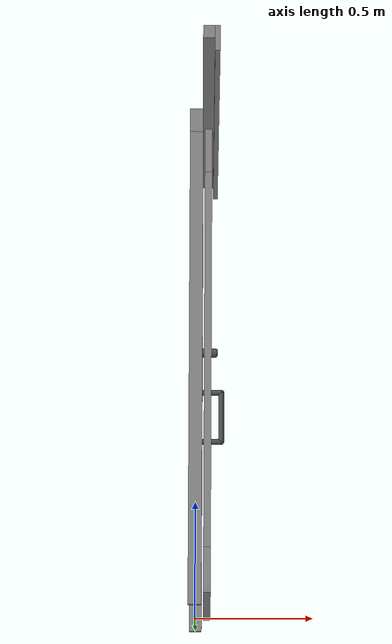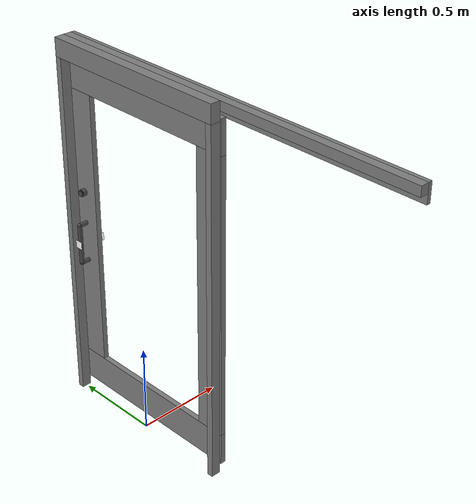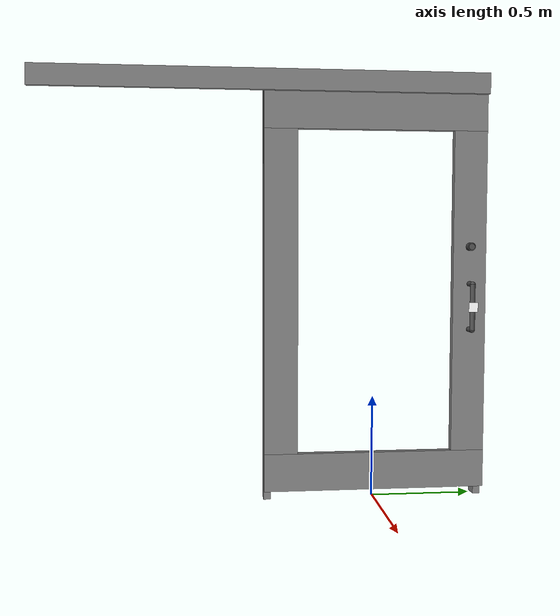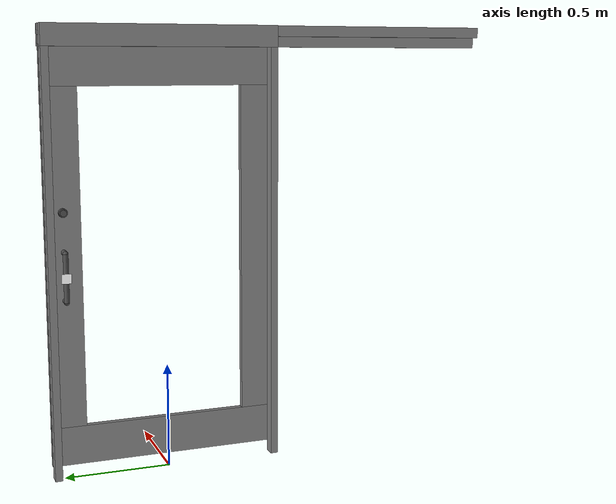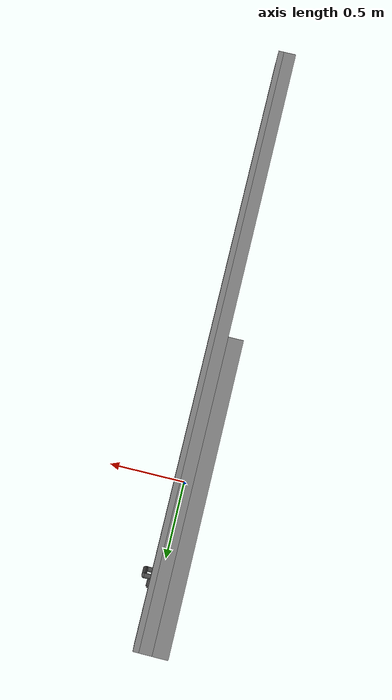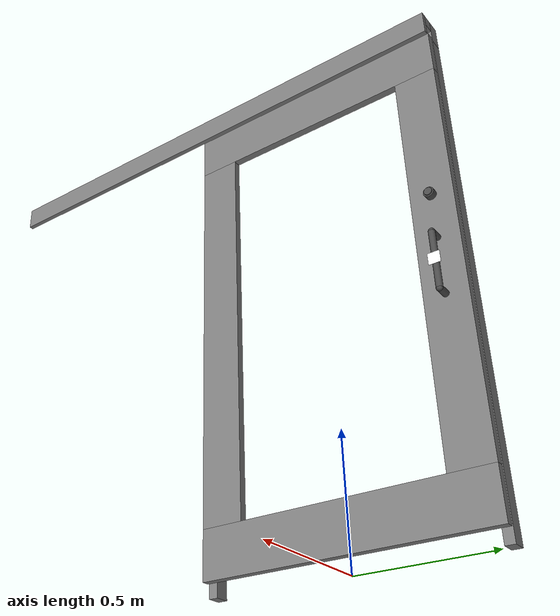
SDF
<?xml version="1.0" ?>
<sdf version="1.4">
    <model name='openable_sliding_door_with_marker2'>
      <joint name="frame_to_world_joint" type="revolute">
          <parent>world</parent>
          <child>frame</child>
          <!-- Mimic fixed joint  -->
          <axis>
              <xyz>0 0 1</xyz>
              <limit>
                  <upper>0</upper>
                  <lower>0</lower>
              </limit>
          </axis>
      </joint>
      <link name='frame'>
        <inertial>
          <mass>50</mass>
          <inertia>
            <ixx>1</ixx>
            <ixy>0</ixy>
            <ixz>0</ixz>
            <iyy>1</iyy>
            <iyz>0</iyz>
            <izz>1</izz>
          </inertia>
        </inertial>
        <visual name='right_frame'>
          <pose>0 0.5325 0.995 0 0 0</pose>
          <geometry>
            <box>
              <size>0.055 0.035 1.990</size>
            </box>
          </geometry>
          <material>
            <!-- hsr_color/white -->
            <name>white</name>
            <ambient>1 1 1 1</ambient>
            <diffuse>0.5 0.5 0.5 1</diffuse>
            <specular>0 0 0 1</specular>
            <emissive>0 0 0 1</emissive>
            <shading>gouraud</shading>
            <receive_shadows>on</receive_shadows>
          </material>
        </visual>
        <collision name='collision_right_frame'>
          <pose>0 0.5325 0.995 0 0 0</pose>
          <geometry>
            <box>
              <size>0.055 0.035 1.990</size>
            </box>
          </geometry>
          <max_contacts>10</max_contacts>
          <surface>
            <bounce/>
            <friction>
              <ode/>
            </friction>
            <contact>
              <ode/>
            </contact>
          </surface>
        </collision>
        <visual name='left_frame'>
          <pose>0 -0.5325 0.995 0 0 0</pose>
          <geometry>
            <box>
              <size>0.055 0.035 1.990</size>
            </box>
          </geometry>
          <material>
            <!-- hsr_color/white -->
            <name>white</name>
            <ambient>1 1 1 1</ambient>
            <diffuse>0.5 0.5 0.5 1</diffuse>
            <specular>0 0 0 1</specular>
            <emissive>0 0 0 1</emissive>
            <shading>gouraud</shading>
            <receive_shadows>on</receive_shadows>
          </material>
        </visual>
        <collision name='collision_left_frame'>
          <pose>0 -0.5325 0.995 0 0 0</pose>
          <geometry>
            <box>
              <size>0.055 0.035 1.990</size>
            </box>
          </geometry>
          <max_contacts>10</max_contacts>
          <surface>
            <bounce/>
            <friction>
              <ode/>
            </friction>
            <contact>
              <ode/>
            </contact>
          </surface>
        </collision>
        <visual name='top_frame'>
          <pose>0 0 2.040 0 0 0</pose>
          <geometry>
            <box>
              <size>0.055 1.1 0.1</size>
            </box>
          </geometry>
          <material>
            <!-- hsr_color/white -->
            <name>white</name>
            <ambient>1 1 1 1</ambient>
            <diffuse>0.5 0.5 0.5 1</diffuse>
            <specular>0 0 0 1</specular>
            <emissive>0 0 0 1</emissive>
            <shading>gouraud</shading>
            <receive_shadows>on</receive_shadows>
          </material>
        </visual>
        <collision name='collision_top_frame'>
          <pose>0 0 2.040 0 0 0</pose>
          <geometry>
            <box>
              <size>0.055 1.1 0.1</size>
            </box>
          </geometry>
          <max_contacts>10</max_contacts>
          <surface>
            <bounce/>
            <friction>
              <ode/>
            </friction>
            <contact>
              <ode/>
            </contact>
          </surface>
        </collision>

        <visual name='top_guard'>
          <pose>0.05 -0.55 2.065 0 0 0</pose>
          <geometry>
            <box>
              <size>0.045 2.2 0.05</size>
            </box>
          </geometry>
          <material>
            <!-- hsr_color/white -->
            <name>white</name>
            <ambient>1 1 1 1</ambient>
            <diffuse>0.5 0.5 0.5 1</diffuse>
            <specular>0 0 0 1</specular>
            <emissive>0 0 0 1</emissive>
            <shading>gouraud</shading>
            <receive_shadows>on</receive_shadows>
          </material>
        </visual>
        <collision name='collision_top_guard'>
          <pose>0.05 -0.55 2.065 0 0 0</pose>
          <geometry>
            <box>
              <size>0.045 2.2 0.05</size>
            </box>
          </geometry>
          <max_contacts>10</max_contacts>
          <surface>
            <bounce/>
            <friction>
              <ode/>
            </friction>
            <contact>
              <ode/>
            </contact>
          </surface>
        </collision>
        <visual name='front_guard'>
          <pose>0.0825 -0.55 2.04 0 0 0</pose>
          <geometry>
            <box>
              <size>0.020 2.2 0.10</size>
            </box>
          </geometry>
          <material>
            <!-- hsr_color/white -->
            <name>white</name>
            <ambient>1 1 1 1</ambient>
            <diffuse>0.5 0.5 0.5 1</diffuse>
            <specular>0 0 0 1</specular>
            <emissive>0 0 0 1</emissive>
            <shading>gouraud</shading>
            <receive_shadows>on</receive_shadows>
          </material>
        </visual>
        <collision name='collision_front_guard'>
          <pose>0.0825 -0.55 2.04 0 0 0</pose>
          <geometry>
            <box>
              <size>0.020 2.2 0.10</size>
            </box>
          </geometry>
          <max_contacts>10</max_contacts>
          <surface>
            <bounce/>
            <friction>
              <ode/>
            </friction>
            <contact>
              <ode/>
            </contact>
          </surface>
        </collision>
      </link>
      <link name='door'>
        <pose>-0.0275 0 0 0 0 0</pose>
        <visual name='top_frame'>
          <pose>0.0775 0 1.9075 0 0 0</pose>
          <geometry>
            <box>
              <size>0.030 1.1 0.185</size>
            </box>
          </geometry>
          <material>
            <!-- base_materials/wood -->
            <name>wood</name>
            <ambient>1 1 1 1</ambient>
            <diffuse>0.5 0.5 0.5 1.0</diffuse>
            <specular>0 0 0 1.0</specular>
            <shininess>12.5</shininess>
            <pbr>
              <metal>
                <albedo_map>model://base_materials/wood/textures/light_wood.png</albedo_map>
                <max_anisotropy>16</max_anisotropy>
                <metalness>0</metalness>
              </metal>
            </pbr>
          </material>
        </visual>
        <collision name='collision_top_frame'>
          <pose>0.0775 0 1.9075 0 0 0</pose>
          <geometry>
            <box>
              <size>0.030 1.1 0.185</size>
            </box>
          </geometry>
          <max_contacts>10</max_contacts>
          <surface>
            <bounce/>
            <friction>
              <ode/>
            </friction>
            <contact>
              <ode/>
            </contact>
          </surface>
        </collision>
        <visual name='right_frame'>
          <pose>0.0775 0.4675 1.0250 0 0 0</pose>
          <geometry>
            <box>
              <size>0.030 0.165 1.580</size>
            </box>
          </geometry>
          <material>
            <!-- base_materials/wood -->
            <name>wood</name>
            <ambient>1 1 1 1</ambient>
            <diffuse>0.5 0.5 0.5 1.0</diffuse>
            <specular>0 0 0 1.0</specular>
            <shininess>12.5</shininess>
            <pbr>
              <metal>
                <albedo_map>model://base_materials/wood/textures/light_wood.png</albedo_map>
                <max_anisotropy>16</max_anisotropy>
                <metalness>0</metalness>
              </metal>
            </pbr>
          </material>
        </visual>
        <collision name='collision_right_frame'>
          <pose>0.0775 0.4675 1.0250 0 0 0</pose>
          <geometry>
            <box>
              <size>0.030 0.165 1.580</size>
            </box>
          </geometry>
          <max_contacts>10</max_contacts>
          <surface>
            <bounce/>
            <friction>
              <ode/>
            </friction>
            <contact>
              <ode/>
            </contact>
          </surface>
        </collision>
        <visual name='left_frame'>
          <pose>0.0775 -0.4675 1.0250 0 0 0</pose>
          <geometry>
            <box>
              <size>0.030 0.165 1.580</size>
            </box>
          </geometry>
          <material>
            <!-- base_materials/wood -->
            <name>wood</name>
            <ambient>1 1 1 1</ambient>
            <diffuse>0.5 0.5 0.5 1.0</diffuse>
            <specular>0 0 0 1.0</specular>
            <shininess>12.5</shininess>
            <pbr>
              <metal>
                <albedo_map>model://base_materials/wood/textures/light_wood.png</albedo_map>
                <max_anisotropy>16</max_anisotropy>
                <metalness>0</metalness>
              </metal>
            </pbr>
          </material>
        </visual>
        <collision name='collision_left_frame'>
          <pose>0.0775 -0.4675 1.0250 0 0 0</pose>
          <geometry>
            <box>
              <size>0.030 0.165 1.580</size>
            </box>
          </geometry>
          <max_contacts>10</max_contacts>
          <surface>
            <bounce/>
            <friction>
              <ode/>
            </friction>
            <contact>
              <ode/>
            </contact>
          </surface>
        </collision>
        <visual name='bottom_frame'>
          <pose>0.0775 0 0.1425 0 0 0</pose>
          <geometry>
            <box>
              <size>0.030 1.1 0.185</size>
            </box>
          </geometry>
          <material>
            <!-- base_materials/wood -->
            <name>wood</name>
            <ambient>1 1 1 1</ambient>
            <diffuse>0.5 0.5 0.5 1.0</diffuse>
            <specular>0 0 0 1.0</specular>
            <shininess>12.5</shininess>
            <pbr>
              <metal>
                <albedo_map>model://base_materials/wood/textures/light_wood.png</albedo_map>
                <max_anisotropy>16</max_anisotropy>
                <metalness>0</metalness>
              </metal>
            </pbr>
          </material>
        </visual>
        <collision name='collision_bottom_frame'>
          <pose>0.0775 0 0.1425 0 0 0</pose>
          <geometry>
            <box>
              <size>0.030 1.1 0.185</size>
            </box>
          </geometry>
          <max_contacts>10</max_contacts>
          <surface>
            <bounce/>
            <friction>
              <ode/>
            </friction>
            <contact>
              <ode/>
            </contact>
          </surface>
        </collision>
        <visual name='handle_top_frame'>
          <pose>0.0775 0.4675 1.0675 0 1.5708 0</pose>
          <geometry>
            <cylinder>
              <radius>0.0125</radius>
              <length>0.125</length>
            </cylinder>
          </geometry>
          <material>
            <!-- hsr_color/grey -->
            <name>grey</name>
            <ambient>0.7 0.7 0.7 1</ambient>
            <diffuse>0.3 0.3 0.3 1</diffuse>
            <specular>0 0 0 1</specular>
            <emissive>0 0 0 1</emissive>
            <shading>gouraud</shading>
            <receive_shadows>on</receive_shadows>
          </material>
        </visual>
        <collision name='collision_handle_top_frame'>
          <pose>0.0775 0.4675 1.0675 0 1.5708 0</pose>
          <geometry>
            <cylinder>
              <radius>0.0125</radius>
              <length>0.125</length>
            </cylinder>
          </geometry>
          <max_contacts>10</max_contacts>
          <surface>
            <bounce/>
            <friction>
              <ode/>
            </friction>
            <contact>
              <ode/>
            </contact>
          </surface>
        </collision>
        <visual name='handle_bottom_frame'>
          <pose>0.0775 0.4675 0.8425 0 1.5708 0</pose>
          <geometry>
            <cylinder>
              <radius>0.0125</radius>
              <length>0.125</length>
            </cylinder>
          </geometry>
          <material>
            <!-- hsr_color/grey -->
            <name>grey</name>
            <ambient>0.7 0.7 0.7 1</ambient>
            <diffuse>0.3 0.3 0.3 1</diffuse>
            <specular>0 0 0 1</specular>
            <emissive>0 0 0 1</emissive>
            <shading>gouraud</shading>
            <receive_shadows>on</receive_shadows>
          </material>
        </visual>
        <collision name='collision_handle_bottom_frame'>
          <pose>0.0775 0.4675 0.8425 0 1.5708 0</pose>
          <geometry>
            <cylinder>
              <radius>0.0125</radius>
              <length>0.125</length>
            </cylinder>
          </geometry>
          <max_contacts>10</max_contacts>
          <surface>
            <bounce/>
            <friction>
              <ode/>
            </friction>
            <contact>
              <ode/>
            </contact>
          </surface>
        </collision>
        <visual name='handle_front_frame'>
          <pose>0.14 0.4675 0.955 0 0 0</pose>
          <geometry>
            <cylinder>
              <radius>0.0125</radius>
              <length>0.225</length>
            </cylinder>
          </geometry>
          <material>
            <!-- hsr_color/grey -->
            <name>grey</name>
            <ambient>0.7 0.7 0.7 1</ambient>
            <diffuse>0.3 0.3 0.3 1</diffuse>
            <specular>0 0 0 1</specular>
            <emissive>0 0 0 1</emissive>
            <shading>gouraud</shading>
            <receive_shadows>on</receive_shadows>
          </material>
        </visual>
        <collision name='collision_handle_front_frame'>
          <pose>0.14 0.4675 0.955 0 0 0</pose>
          <geometry>
            <cylinder>
              <radius>0.0125</radius>
              <length>0.225</length>
            </cylinder>
          </geometry>
          <max_contacts>10</max_contacts>
          <surface>
            <bounce/>
            <friction>
              <ode/>
            </friction>
            <contact>
              <ode/>
            </contact>
          </surface>
        </collision>
        <visual name='marker_1103'>
          <pose>0.1525 0.4675 0.955 0 1.5708 3.1415</pose>
          <geometry>
            <box>
              <size>0.045 0.045 0.0001</size>
            </box>
          </geometry>

          <material>
            <name>Marker/1103</name>

            <ambient>1 1 1 1</ambient>  <!-- 周囲光 (真っ白) -->
            <diffuse>1 1 1 1</diffuse>  <!-- 反射光 (真っ白) -->
            <specular>0 0 0 1</specular>  <!-- 鏡面反射 (無し) -->
            <emissive>0 0 0 0</emissive>  <!-- 発光 (無し) -->

            <pbr>
              <metal>
                <albedo_map>model://marker/1103/textures/BchThin_Id1103_Size36.png</albedo_map>
                <max_anisotropy>16</max_anisotropy>
                <metalness>0.0</metalness> <!-- 金属感を排除 -->
              </metal>
            </pbr>
          </material>
        </visual>
        <visual name='handle_back_frame'>
          <pose>0.015 0.4675 0.955 0 0 0</pose>
          <geometry>
            <cylinder>
              <radius>0.0125</radius>
              <length>0.225</length>
            </cylinder>
          </geometry>
          <material>
            <!-- hsr_color/grey -->
            <name>grey</name>
            <ambient>0.7 0.7 0.7 1</ambient>
            <diffuse>0.3 0.3 0.3 1</diffuse>
            <specular>0 0 0 1</specular>
            <emissive>0 0 0 1</emissive>
            <shading>gouraud</shading>
            <receive_shadows>on</receive_shadows>
          </material>
        </visual>
        <collision name='collision_handle_back_frame'>
          <pose>0.015 0.4675 0.955 0 0 0</pose>
          <geometry>
            <cylinder>
              <radius>0.0125</radius>
              <length>0.225</length>
            </cylinder>
          </geometry>
          <max_contacts>10</max_contacts>
          <surface>
            <bounce/>
            <friction>
              <ode/>
            </friction>
            <contact>
              <ode/>
            </contact>
          </surface>
        </collision>
        <visual name='marker_1104'>
          <pose>0.0025 0.4675 0.955 0 1.5708 0</pose>
          <geometry>
            <box>
              <size>0.045 0.045 0.0001</size>
            </box>
          </geometry>

          <material>
            <name>Marker/1104</name>

            <ambient>1 1 1 1</ambient>  <!-- 周囲光 (真っ白) -->
            <diffuse>1 1 1 1</diffuse>  <!-- 反射光 (真っ白) -->
            <specular>0 0 0 1</specular>  <!-- 鏡面反射 (無し) -->
            <emissive>0 0 0 0</emissive>  <!-- 発光 (無し) -->

            <pbr>
              <metal>
                <albedo_map>model://marker/1104/textures/BchThin_Id1104_Size36.png</albedo_map>
                <max_anisotropy>16</max_anisotropy>
                <metalness>0.0</metalness> <!-- 金属感を排除 -->
              </metal>
            </pbr>
          </material>
        </visual>
        <visual name='handle_front_top_corner'>
          <pose>0.14 0.4675 1.0675 0 0 0</pose>
          <geometry>
            <sphere>
              <radius>0.0125</radius>
            </sphere>
          </geometry>
          <material>
            <!-- hsr_color/grey -->
            <name>grey</name>
            <ambient>0.7 0.7 0.7 1</ambient>
            <diffuse>0.3 0.3 0.3 1</diffuse>
            <specular>0 0 0 1</specular>
            <emissive>0 0 0 1</emissive>
            <shading>gouraud</shading>
            <receive_shadows>on</receive_shadows>
          </material>
        </visual>
        <collision name='collision_handle_front_top_corner'>
          <pose>0.14 0.4675 1.0675 0 0 0</pose>
          <geometry>
            <sphere>
              <radius>0.0125</radius>
            </sphere>
          </geometry>
          <max_contacts>10</max_contacts>
          <surface>
            <bounce/>
            <friction>
              <ode/>
            </friction>
            <contact>
              <ode/>
            </contact>
          </surface>
        </collision>
        <visual name='handle_front_bottom_corner'>
          <pose>0.14 0.4675 0.8425 0 0 0</pose>
          <geometry>
            <sphere>
              <radius>0.0125</radius>
            </sphere>
          </geometry>
          <material>
            <!-- hsr_color/grey -->
            <name>grey</name>
            <ambient>0.7 0.7 0.7 1</ambient>
            <diffuse>0.3 0.3 0.3 1</diffuse>
            <specular>0 0 0 1</specular>
            <emissive>0 0 0 1</emissive>
            <shading>gouraud</shading>
            <receive_shadows>on</receive_shadows>
          </material>
        </visual>
        <collision name='collision_handle_front_bottom_corner'>
          <pose>0.14 0.4675 0.8425 0 0 0</pose>
          <geometry>
            <sphere>
              <radius>0.0125</radius>
            </sphere>
          </geometry>
          <max_contacts>10</max_contacts>
          <surface>
            <bounce/>
            <friction>
              <ode/>
            </friction>
            <contact>
              <ode/>
            </contact>
          </surface>
        </collision>
        <visual name='handle_back_top_corner'>
          <pose>0.015 0.4675 1.0675 0 0 0</pose>
          <geometry>
            <sphere>
              <radius>0.0125</radius>
            </sphere>
          </geometry>
          <material>
            <!-- hsr_color/grey -->
            <name>grey</name>
            <ambient>0.7 0.7 0.7 1</ambient>
            <diffuse>0.3 0.3 0.3 1</diffuse>
            <specular>0 0 0 1</specular>
            <emissive>0 0 0 1</emissive>
            <shading>gouraud</shading>
            <receive_shadows>on</receive_shadows>
          </material>
        </visual>
        <collision name='collision_handle_back_top_corner'>
          <pose>0.015 0.4675 1.0675 0 0 0</pose>
          <geometry>
            <sphere>
              <radius>0.0125</radius>
            </sphere>
          </geometry>
          <max_contacts>10</max_contacts>
          <surface>
            <bounce/>
            <friction>
              <ode/>
            </friction>
            <contact>
              <ode/>
            </contact>
          </surface>
        </collision>
        <visual name='handle_back_bottom_corner'>
          <pose>0.015 0.4675 0.8425 0 0 0</pose>
          <geometry>
            <sphere>
              <radius>0.0125</radius>
            </sphere>
          </geometry>
          <material>
            <!-- hsr_color/grey -->
            <name>grey</name>
            <ambient>0.7 0.7 0.7 1</ambient>
            <diffuse>0.3 0.3 0.3 1</diffuse>
            <specular>0 0 0 1</specular>
            <emissive>0 0 0 1</emissive>
            <shading>gouraud</shading>
            <receive_shadows>on</receive_shadows>
          </material>
        </visual>
        <collision name='collision_handle_back_bottom_corner'>
          <pose>0.015 0.4675 0.8425 0 0 0</pose>
          <geometry>
            <sphere>
              <radius>0.0125</radius>
            </sphere>
          </geometry>
          <max_contacts>10</max_contacts>
          <surface>
            <bounce/>
            <friction>
              <ode/>
            </friction>
            <contact>
              <ode/>
            </contact>
          </surface>
        </collision>
        <visual name='handle_lock1'>
          <pose>0.0775 0.4675 1.25 0 1.5708 0</pose>
          <geometry>
            <cylinder>
              <radius>0.02</radius>
              <length>0.08</length>
            </cylinder>
          </geometry>
          <material>
            <!-- hsr_color/grey -->
            <name>grey</name>
            <ambient>0.7 0.7 0.7 1</ambient>
            <diffuse>0.3 0.3 0.3 1</diffuse>
            <specular>0 0 0 1</specular>
            <emissive>0 0 0 1</emissive>
            <shading>gouraud</shading>
            <receive_shadows>on</receive_shadows>
          </material>
        </visual>
        <collision name='collision_handle_lock1'>
          <pose>0.0775 0.4675 1.25 0 1.5708 0</pose>
          <geometry>
            <cylinder>
              <radius>0.02</radius>
              <length>0.08</length>
            </cylinder>
          </geometry>
          <max_contacts>10</max_contacts>
          <surface>
            <bounce/>
            <friction>
              <ode/>
            </friction>
            <contact>
              <ode/>
            </contact>
          </surface>
        </collision>
        <visual name='handle_lock2'>
          <pose>0.0775 0.4675 1.25 0 1.5708 0</pose>
          <geometry>
            <cylinder>
              <radius>0.015</radius>
              <length>0.09</length>
            </cylinder>
          </geometry>
          <material>
            <!-- hsr_color/grey -->
            <name>grey</name>
            <ambient>0.7 0.7 0.7 1</ambient>
            <diffuse>0.3 0.3 0.3 1</diffuse>
            <specular>0 0 0 1</specular>
            <emissive>0 0 0 1</emissive>
            <shading>gouraud</shading>
            <receive_shadows>on</receive_shadows>
          </material>
        </visual>
        <collision name='collision_handle_lock2'>
          <pose>0.0775 0.4675 1.25 0 1.5708 0</pose>
          <geometry>
            <cylinder>
              <radius>0.015</radius>
              <length>0.09</length>
            </cylinder>
          </geometry>
          <max_contacts>10</max_contacts>
          <surface>
            <bounce/>
            <friction>
              <ode/>
            </friction>
            <contact>
              <ode/>
            </contact>
          </surface>
        </collision>
        <velocity_decay>
          <linear>0</linear>
          <angular>0</angular>
        </velocity_decay>
        <self_collide>0</self_collide>
        <kinematic>0</kinematic>
        <gravity>1</gravity>
      </link>
      <joint name="top_sliding_joint" type="prismatic">
        <parent>frame</parent>
        <child>door</child>
        <axis>
            <dynamics>
              <damping>1.000000</damping>
              <friction>1.000000</friction>
            </dynamics>
            <limit>
                <lower>-1.0</lower>
                <upper>0</upper>
            </limit>
            <xyz>0 1 0</xyz>
        </axis>
      </joint>
      <static>0</static>
    </model>
</sdf>
